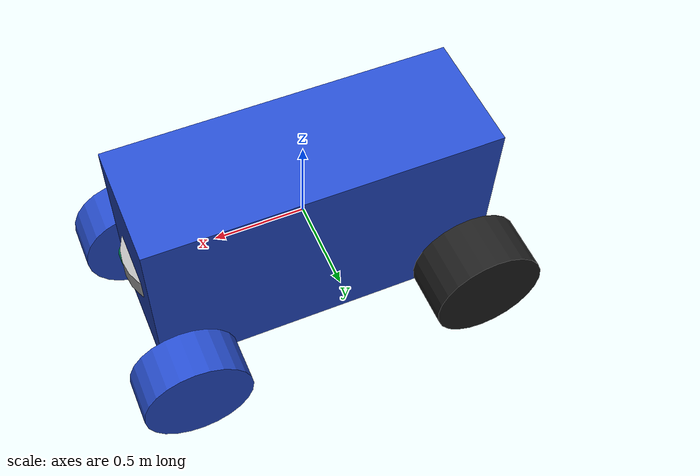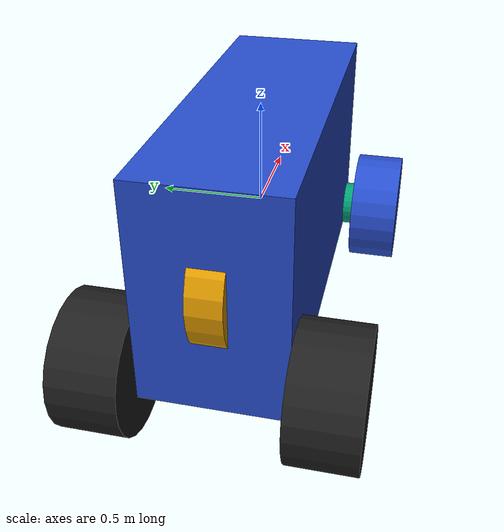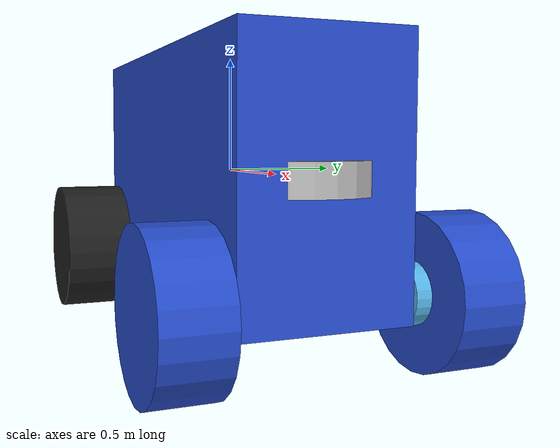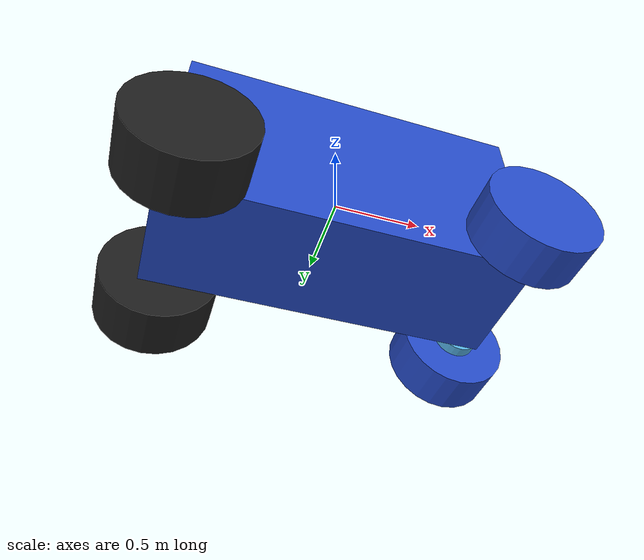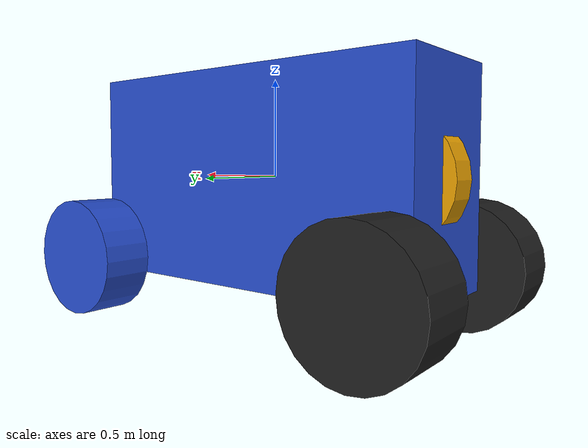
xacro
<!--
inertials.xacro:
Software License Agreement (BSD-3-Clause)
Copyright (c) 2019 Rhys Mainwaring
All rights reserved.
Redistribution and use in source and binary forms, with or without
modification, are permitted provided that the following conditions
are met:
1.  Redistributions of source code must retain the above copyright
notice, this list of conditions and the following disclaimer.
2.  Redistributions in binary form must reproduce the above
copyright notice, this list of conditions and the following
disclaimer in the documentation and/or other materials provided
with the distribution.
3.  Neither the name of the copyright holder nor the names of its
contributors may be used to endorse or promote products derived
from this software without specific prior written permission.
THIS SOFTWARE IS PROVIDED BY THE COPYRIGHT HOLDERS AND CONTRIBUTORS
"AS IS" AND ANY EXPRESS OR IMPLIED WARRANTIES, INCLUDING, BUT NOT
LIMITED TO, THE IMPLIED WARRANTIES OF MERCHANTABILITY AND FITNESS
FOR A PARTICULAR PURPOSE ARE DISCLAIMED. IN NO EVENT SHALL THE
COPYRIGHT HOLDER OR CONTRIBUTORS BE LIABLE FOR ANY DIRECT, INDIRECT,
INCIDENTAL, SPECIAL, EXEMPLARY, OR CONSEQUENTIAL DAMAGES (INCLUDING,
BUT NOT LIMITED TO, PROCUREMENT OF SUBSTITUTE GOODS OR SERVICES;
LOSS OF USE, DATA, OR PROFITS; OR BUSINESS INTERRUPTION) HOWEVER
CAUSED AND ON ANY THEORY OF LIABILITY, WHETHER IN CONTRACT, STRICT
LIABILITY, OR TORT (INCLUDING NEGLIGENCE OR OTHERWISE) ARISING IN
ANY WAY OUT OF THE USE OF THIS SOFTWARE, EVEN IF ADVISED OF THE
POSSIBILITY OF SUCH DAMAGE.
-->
<?xml version="1.0"?>
<robot xmlns:xacro="http://www.ros.org/wiki/xacro" name="acky_bot">
    <!-- xacro includes -->
    <xacro:include filename="$(find acky_bot_description)/urdf/inertials.xacro"/>

    <xacro:property name="robot_namespace" value="/acky_bot"/>

    <!-- Gazebo plugin for ROS Control

        See: http://wiki.ros.org/steer_bot_hardware_gazebo?distro=indigo
    -->
    <gazebo>
        <plugin name="gazebo_ros_control" filename="libgazebo_ros_control.so">
            <robotNamespace>${robot_namespace}</robotNamespace>
            <robotSimType>steer_bot_hardware_gazebo/SteerBotHardwareGazebo</robotSimType>
        </plugin>
    </gazebo>

    <!-- Degree-to-radian conversions -->
    <xacro:property name="degrees_45" value="0.785398163"/>
    <xacro:property name="degrees_90" value="1.57079633"/>
    <xacro:property name="degrees_180" value="3.14159265"/>

    <!-- Basic Geometry of Body -->
    <xacro:property name="body_length" value="1.91" />
    <xacro:property name="body_width" value="0.680618" />
    <xacro:property name="body_height" value="1.065022" />
    <xacro:property name="body_mass" value="20.3"/>

    <!-- Front Wheel Properties -->
    <xacro:property name="front_wheel_width" value=".254" />
    <xacro:property name="front_wheel_diameter" value="0.605" />
    <xacro:property name="front_wheel_mass" value="20"/>

    <!-- Steering Link Properties -->
    <xacro:property name="steering_width" value="${front_wheel_width/4}" />
    <xacro:property name="steering_diameter" value="${front_wheel_diameter/5}" />
    <xacro:property name="steering_mass" value="2"/>

    <!-- Rear Wheel Properties -->
    <xacro:property name="rear_wheel_width" value="${front_wheel_width+steering_width}" />
    <xacro:property name="rear_wheel_diameter" value="0.635" />
    <xacro:property name="rear_wheel_mass" value="22.8"/>

    <!-- Base Link -->
    <link name="base_link">
        <visual>
            <geometry>
                <box size="${body_length} ${body_width} ${body_height}"/>
            </geometry>
            <material name="blue" />
        </visual>
        <collision>
            <geometry>
                <box size="${body_length} ${body_width} ${body_height}"/>
            </geometry>
        </collision>
        <xacro:solid_cuboid_inertial
            rpy="0 0 0" xyz="0 0 0"
            mass="${body_mass}"
            x="${body_length}" y="${body_width}" z="${body_height}" />
    </link>

    <!-- Steering Macro -->
    <xacro:macro name="steering_link" params="prefix reflect">

        <link name="${prefix}_steering_link">
            <visual>
                <origin xyz="0 0 0" rpy="${degrees_90} 0 0"/>
                <geometry>
                    <cylinder radius="${steering_diameter}" length="${steering_width}"/>
                </geometry>
            </visual>
            <collision>
                <origin xyz="0 0 0" rpy="${degrees_90} 0 0"/>
                <geometry>
                    <cylinder radius="${steering_diameter}" length="${steering_width}"/>
                </geometry>
            </collision>
            <xacro:solid_cylinder_inertial
                rpy="0 0 0" xyz="0 0 0"
                mass="${steering_mass}"
                radius="${steering_diameter/2}" length="${steering_width}" />
        </link>

        <joint name="${prefix}_steering_joint" type="revolute">
            <parent link="base_link"/>
            <child link="${prefix}_steering_link"/>
            <axis xyz="0 0 1"/>
            <origin xyz="
                ${(body_length / 2)- 0.1}
                ${(body_width / 2 + steering_width / 2) * reflect}
                ${-(body_height/2) + 0.1}"
                rpy="0 0 0"/>
            <limit lower="-0.30" upper="0.30" effort="100.00" velocity="100.00"/>
        </joint>

        <!-- The Transmission -->
        <transmission name="${prefix}_steering_link_trans">
            <type>transmission_interface/SimpleTransmission</type>
            <joint name="${prefix}_steering_joint">
                <hardwareInterface>hardware_interface/PositionJointInterface</hardwareInterface>
            </joint>
            <actuator name="${prefix}_steering_link_motor">
                <hardwareInterface>hardware_interface/PositionJointInterface</hardwareInterface>
                <mechanicalReduction>1</mechanicalReduction>
            </actuator>
        </transmission>

    </xacro:macro>

    <!-- Front Wheel Macro -->
    <xacro:macro name="front_wheel_link" params="prefix reflect">

        <link name="${prefix}_front_wheel">
            <visual>
                <origin xyz="0 0 0" rpy="${degrees_90} 0 0"/>
                <geometry>
                    <cylinder radius="${front_wheel_diameter/2}" length="${front_wheel_width}"/>
                </geometry>
            </visual>
            <collision>
                <origin xyz="0 0 0" rpy="${degrees_90} 0 0"/>
                <geometry>
                    <cylinder radius="${front_wheel_diameter/2}" length="${front_wheel_width}"/>
                </geometry>
            </collision>
            <xacro:solid_cylinder_inertial
                rpy="${degrees_90} 0 0" xyz="0 0 0"
                mass="${front_wheel_mass}"
                radius="${front_wheel_diameter/2}" length="${front_wheel_width}" />
        </link>

        <gazebo reference="${prefix}_front_wheel">
            <material>Gazebo/Blue</material>
        </gazebo>

        <joint name="${prefix}_front_axle" type="continuous">
            <parent link="${prefix}_steering_link"/>
            <child link="${prefix}_front_wheel"/>
            <axis xyz="0 1 0"/>
            <origin xyz="0 ${(front_wheel_width/2 + steering_width/2) * reflect} 0"/>
        </joint>

        <!-- The Transmission -->
        <transmission name="${prefix}_front_wheel_trans">
            <type>transmission_interface/SimpleTransmission</type>
            <joint name="${prefix}_front_axle">
                <hardwareInterface>hardware_interface/VelocityJointInterface</hardwareInterface>
            </joint>
            <actuator name="${prefix}_front_wheel_motor">
                <hardwareInterface>hardware_interface/VelocityJointInterface</hardwareInterface>
                <mechanicalReduction>1</mechanicalReduction>
            </actuator>
        </transmission>

    </xacro:macro>

    <!-- Rear Wheel Macro -->
    <xacro:macro name="rear_wheel_link" params="prefix reflect">

        <link name="${prefix}_rear_wheel">
            <visual>
                <origin xyz="0 0 0" rpy="${degrees_90} 0 0"/>
                <geometry>
                    <cylinder radius="${rear_wheel_diameter/2}" length="${rear_wheel_width}"/>
                </geometry>
            </visual>
            <collision>
                <origin xyz="0 0 0" rpy="${degrees_90} 0 0"/>
                <geometry>
                    <cylinder radius="${rear_wheel_diameter/2}" length="${rear_wheel_width}"/>
                </geometry>
            </collision>
            <xacro:solid_cylinder_inertial
                rpy="${degrees_90} 0 0" xyz="0 0 0"
                mass="${rear_wheel_mass}"
                radius="${rear_wheel_diameter/2}" length="${rear_wheel_width}" />
        </link>

        <gazebo reference="${prefix}_rear_wheel">
            <material>Gazebo/Black</material>
        </gazebo>

        <joint name="${prefix}_rear_axle" type="continuous">
            <parent link="base_link"/>
            <child link="${prefix}_rear_wheel"/>
            <axis xyz="0 1 0"/>
            <origin xyz="
                ${-(body_length/2) + 0.1}
                ${(rear_wheel_width/2 + body_width/2) * reflect}
                ${-(body_height/2) + 0.1}"
                rpy="0 0 0" />
        </joint>

        <!-- The Transmission -->
        <transmission name="${prefix}_rear_wheel_trans">
            <type>transmission_interface/SimpleTransmission</type>
            <joint name="${prefix}_rear_axle">
                <hardwareInterface>hardware_interface/VelocityJointInterface</hardwareInterface>
            </joint>
            <actuator name="${prefix}_rear_wheel_motor">
                <hardwareInterface>hardware_interface/VelocityJointInterface</hardwareInterface>
                <mechanicalReduction>1</mechanicalReduction>
            </actuator>
        </transmission>

    </xacro:macro>

    <xacro:steering_link prefix="left" reflect="1" />
    <xacro:steering_link prefix="right" reflect="-1" />

    <xacro:front_wheel_link prefix="left" reflect="1" />
    <xacro:front_wheel_link prefix="right" reflect="-1" />

    <xacro:rear_wheel_link prefix="left" reflect="1" />
    <xacro:rear_wheel_link prefix="right" reflect="-1" />

    <link name="front_steer">
        <visual>
            <origin xyz="0 0 0" rpy="0 0 0"/>
            <geometry>
                <cylinder radius="${front_wheel_diameter/2}" length="${front_wheel_width/2}"/>
            </geometry>
        </visual>
        <collision>
            <origin xyz="0 0 0" rpy="0 0 0"/>
            <geometry>
                <cylinder radius="${front_wheel_diameter/2}" length="${front_wheel_width/2}"/>
            </geometry>
        </collision>
        <xacro:solid_cylinder_inertial
            rpy="${degrees_90} 0 0" xyz="0 0 0"
            mass="${front_wheel_mass/2}"
            radius="${front_wheel_diameter/2}" length="${front_wheel_width/2}" />
    </link>

    <link name="rear_wheel">
        <visual>
            <origin xyz="0 0 0" rpy="${degrees_90} 0 0"/>
            <geometry>
                <cylinder radius="${rear_wheel_diameter/2}" length="${rear_wheel_width/2}"/>
            </geometry>
        </visual>
        <collision>
            <origin xyz="0 0 0" rpy="${degrees_90} 0 0"/>
            <geometry>
                <cylinder radius="${rear_wheel_diameter/2}" length="${rear_wheel_width/2}"/>
            </geometry>
        </collision>
        <xacro:solid_cylinder_inertial
            rpy="${degrees_90} 0 0" xyz="0 0 0"
            mass="${rear_wheel_mass/2}"
            radius="${rear_wheel_diameter/2}" length="${rear_wheel_width/2}" />
    </link>

    <joint name="front_steer_joint" type="revolute">
        <parent link="base_link"/>
        <child link="front_steer"/>
        <axis xyz="0 0 1"/>
        <origin xyz="0.7 0 0" rpy="0 0 0"/>
        <limit lower="-0.50" upper="0.50" effort="1000" velocity="3"/>
    </joint>

    <joint name="rear_wheel_joint" type="continuous">
        <parent link="base_link"/>
        <child link="rear_wheel"/>
        <axis xyz="0 1 0"/>
        <origin xyz="-0.7 0 0 " rpy="0 0 0"/>
        <limit effort="1000.0" velocity="3.0"/>
    </joint>

    <transmission name="front_steer_joint_trans">
        <type>transmission_interface/SimpleTransmission</type>
        <joint name="front_steer_joint">
            <hardwareInterface>hardware_interface/PositionJointInterface</hardwareInterface>
        </joint>
        <actuator name="front_steer_joint_motor">
            <hardwareInterface>hardware_interface/PositionJointInterface</hardwareInterface>
            <mechanicalReduction>1</mechanicalReduction>
        </actuator>
    </transmission>

    <transmission name="rear_wheel_joint_trans">
        <type>transmission_interface/SimpleTransmission</type>
        <joint name="rear_wheel_joint">
            <hardwareInterface>hardware_interface/VelocityJointInterface</hardwareInterface>
        </joint>
        <actuator name="rear_wheel_joint_motor">
            <hardwareInterface>hardware_interface/VelocityJointInterface</hardwareInterface>
            <mechanicalReduction>1</mechanicalReduction>
        </actuator>
    </transmission>

</robot>

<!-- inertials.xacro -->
<!--  xacro macros for inertials.

    Define xacro macros for math constants and inertials:

    - solid cuboid
    - solid cylinder
    - null (a placeholder inertial for logical link elements)
 -->
<robot name="inertials" xmlns:xacro="http://www.ros.org/wiki/xacro">

    <!-- Math constants -->
    <xacro:property name="math_pi"        value="3.141592653589793" />
    <xacro:property name="math_pi_over_2" value="1.5707963267948966" />
    <xacro:property name="math_pi_over_4" value="0.785398163397448" />

    <!-- Inertial for solid cuboid with dimensions x y z  -->
    <xacro:macro name="solid_cuboid_inertial" params="rpy xyz mass x y z">
        <inertial>
            <origin rpy="${rpy}" xyz="${xyz}"/>
            <mass value="${mass}" />
            <inertia
                ixx="${mass * (y * y + z * z) / 12.0}" ixy="0.0" ixz="0.0"
                iyy="${mass * (x * x + z * z) / 12.0}" iyz="0.0"
                izz="${mass * (x * x + y * y) / 12.0}" />
        </inertial>
    </xacro:macro>

    <!-- Inertial for solid cylinder with radius and length aligned to z-axis  -->
    <xacro:macro name="solid_cylinder_inertial" params="rpy xyz mass radius length">
        <inertial>
            <origin rpy="${rpy}" xyz="${xyz}"/>
            <mass value="${mass}" />
            <inertia
                ixx="${mass * (3.0 * radius * radius + length * length) / 12.0}" ixy="0.0" ixz="0.0"
                iyy="${mass * (3.0 * radius * radius + length * length) / 12.0}" iyz="0.0"
                izz="${mass * (radius * radius) / 2.0}" />
        </inertial>
    </xacro:macro>

    <!-- A null inertial - used in placeholder links to esure the model will work in Gazebo -->
    <xacro:macro name="null_inertial">
        <inertial>
            <mass value="0.001"/>
            <inertia ixx="0.001" ixy="0" ixz="0" iyy="0.001" iyz="0" izz="0.001"/>
        </inertial>
    </xacro:macro>
</robot>
